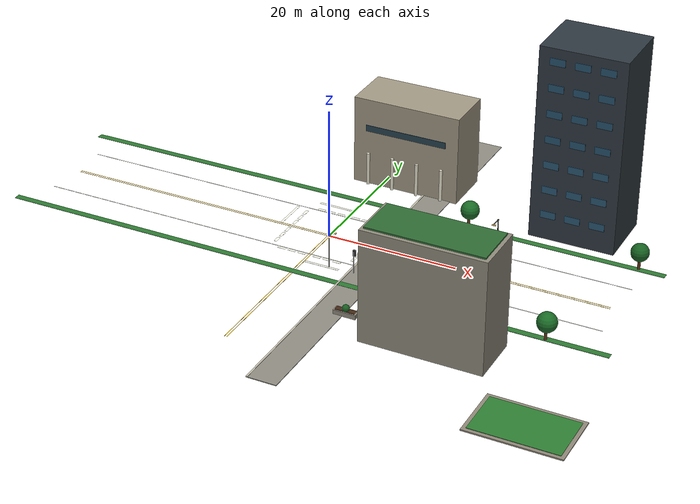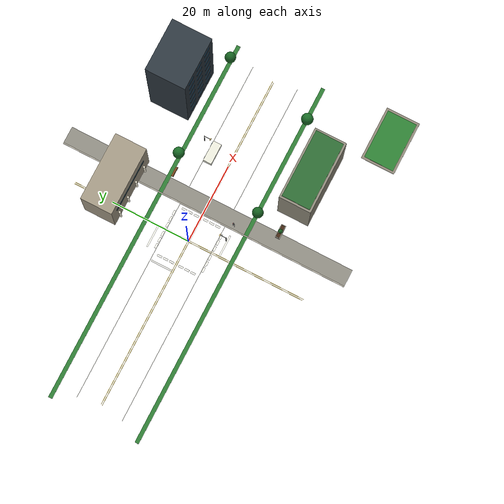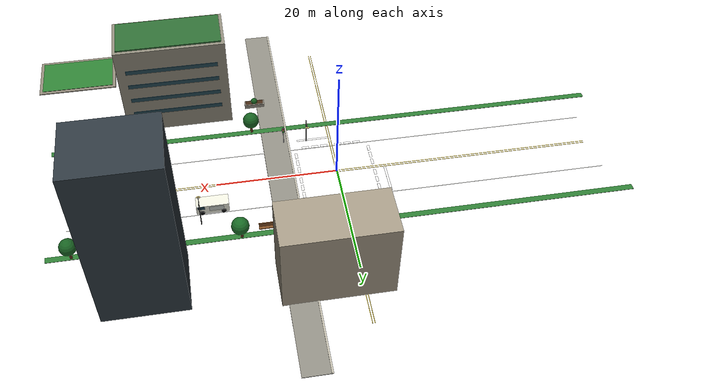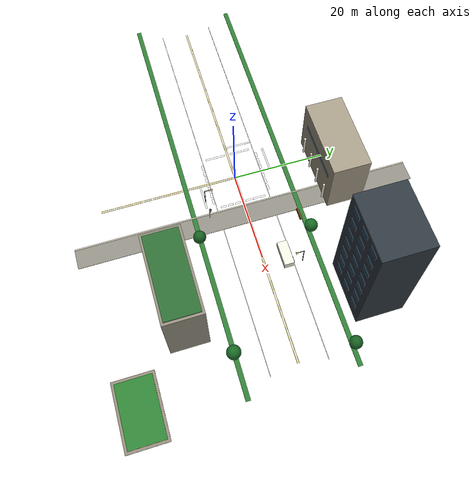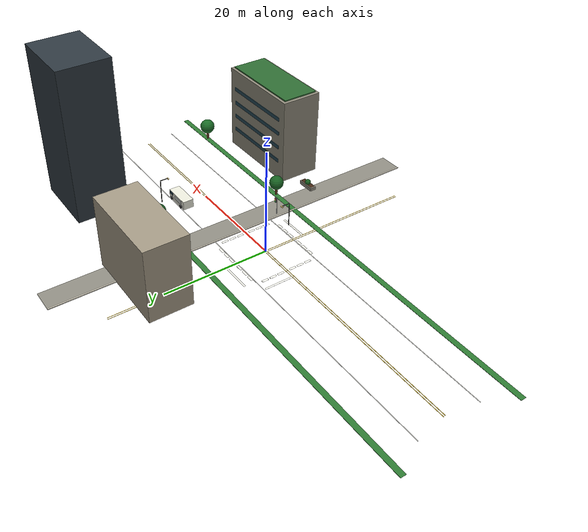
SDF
<sdf version="1.8">
 <world name="city_street">
  <model name="east_sidewalk">
   <static>true</static>
   <link name="link">
    <collision name="collision"><geometry><box><size>4.2 74 0.12</size></box></geometry></collision>
    <visual name="concrete">
     <geometry><box><size>4.2 74 0.12</size></box></geometry>
     <material>
      <ambient>0.45 0.44 0.41 1</ambient>
      <diffuse>0.56 0.55 0.51 1</diffuse>
      <specular>0.08 0.08 0.07 1</specular>
     </material>
    </visual>
   </link>
   <pose>9.4 0 0.06 0 0 0</pose>
  </model>
  <model name="east_curb">
   <static>true</static>
   <link name="link">
    <collision name="collision"><geometry><box><size>0.28 74 0.18</size></box></geometry></collision>
    <visual name="curb">
     <geometry><box><size>0.28 74 0.18</size></box></geometry>
     <material><ambient>0.64 0.62 0.57 1</ambient><diffuse>0.76 0.74 0.68 1</diffuse></material>
    </visual>
   </link>
   <pose>7.16 0 0.09 0 0 0</pose>
  </model>
  <model name="road_markings">
   <static>true</static>
   <link name="link">
    <visual name="double_yellow_left">
     <pose>0 0.18 0.032 0 0 0</pose>
     <geometry><box><size>86 0.08 0.012</size></box></geometry>
     <material><ambient>0.95 0.74 0.12 1</ambient><diffuse>1.00 0.82 0.16 1</diffuse></material>
    </visual>
    <visual name="double_yellow_right">
     <pose>0 -0.18 0.032 0 0 0</pose>
     <geometry><box><size>86 0.08 0.012</size></box></geometry>
     <material><ambient>0.95 0.74 0.12 1</ambient><diffuse>1.00 0.82 0.16 1</diffuse></material>
    </visual>
    <visual name="north_edge_line">
     <pose>0 5.9 0.032 0 0 0</pose>
     <geometry><box><size>88 0.10 0.012</size></box></geometry>
     <material><ambient>0.86 0.86 0.82 1</ambient><diffuse>0.96 0.96 0.92 1</diffuse></material>
    </visual>
    <visual name="south_edge_line">
     <pose>0 -5.9 0.032 0 0 0</pose>
     <geometry><box><size>88 0.10 0.012</size></box></geometry>
     <material><ambient>0.86 0.86 0.82 1</ambient><diffuse>0.96 0.96 0.92 1</diffuse></material>
    </visual>
    <visual name="cross_road_center_line_1">
     <pose>0.18 0 0.034 0 0 1.5708</pose>
     <geometry><box><size>60 0.08 0.012</size></box></geometry>
     <material><ambient>0.95 0.74 0.12 1</ambient><diffuse>1.00 0.82 0.16 1</diffuse></material>
    </visual>
    <visual name="cross_road_center_line_2">
     <pose>-0.18 0 0.034 0 0 1.5708</pose>
     <geometry><box><size>60 0.08 0.012</size></box></geometry>
     <material><ambient>0.95 0.74 0.12 1</ambient><diffuse>1.00 0.82 0.16 1</diffuse></material>
    </visual>
    <visual name="stop_line_west">
     <pose>-8.0 2.9 0.036 0 0 0</pose>
     <geometry><box><size>0.35 5.4 0.012</size></box></geometry>
     <material><ambient>0.92 0.92 0.88 1</ambient><diffuse>1.0 1.0 0.94 1</diffuse></material>
    </visual>
    <visual name="stop_line_east">
     <pose>8.0 -2.9 0.036 0 0 0</pose>
     <geometry><box><size>0.35 5.4 0.012</size></box></geometry>
     <material><ambient>0.92 0.92 0.88 1</ambient><diffuse>1.0 1.0 0.94 1</diffuse></material>
    </visual>
    <visual name="stop_line_north">
     <pose>-2.9 8.0 0.036 0 0 1.5708</pose>
     <geometry><box><size>0.35 5.4 0.012</size></box></geometry>
     <material><ambient>0.92 0.92 0.88 1</ambient><diffuse>1.0 1.0 0.94 1</diffuse></material>
    </visual>
    <visual name="stop_line_south">
     <pose>2.9 -8.0 0.036 0 0 1.5708</pose>
     <geometry><box><size>0.35 5.4 0.012</size></box></geometry>
     <material><ambient>0.92 0.92 0.88 1</ambient><diffuse>1.0 1.0 0.94 1</diffuse></material>
    </visual>
    <visual name="crosswalk_west_1">
     <pose>-6.2 -4.4 0.04 0 0 0</pose>
     <geometry><box><size>0.42 1.2 0.012</size></box></geometry>
     <material><ambient>0.90 0.90 0.86 1</ambient><diffuse>1.0 1.0 0.94 1</diffuse></material>
    </visual>
    <visual name="crosswalk_west_2">
     <pose>-6.2 -2.8 0.04 0 0 0</pose>
     <geometry><box><size>0.42 1.2 0.012</size></box></geometry>
     <material><ambient>0.90 0.90 0.86 1</ambient><diffuse>1.0 1.0 0.94 1</diffuse></material>
    </visual>
    <visual name="crosswalk_west_3">
     <pose>-6.2 -1.2 0.04 0 0 0</pose>
     <geometry><box><size>0.42 1.2 0.012</size></box></geometry>
     <material><ambient>0.90 0.90 0.86 1</ambient><diffuse>1.0 1.0 0.94 1</diffuse></material>
    </visual>
    <visual name="crosswalk_west_4">
     <pose>-6.2 1.2 0.04 0 0 0</pose>
     <geometry><box><size>0.42 1.2 0.012</size></box></geometry>
     <material><ambient>0.90 0.90 0.86 1</ambient><diffuse>1.0 1.0 0.94 1</diffuse></material>
    </visual>
    <visual name="crosswalk_west_5">
     <pose>-6.2 2.8 0.04 0 0 0</pose>
     <geometry><box><size>0.42 1.2 0.012</size></box></geometry>
     <material><ambient>0.90 0.90 0.86 1</ambient><diffuse>1.0 1.0 0.94 1</diffuse></material>
    </visual>
    <visual name="crosswalk_west_6">
     <pose>-6.2 4.4 0.04 0 0 0</pose>
     <geometry><box><size>0.42 1.2 0.012</size></box></geometry>
     <material><ambient>0.90 0.90 0.86 1</ambient><diffuse>1.0 1.0 0.94 1</diffuse></material>
    </visual>
    <visual name="crosswalk_east_1">
     <pose>6.2 -4.4 0.04 0 0 0</pose>
     <geometry><box><size>0.42 1.2 0.012</size></box></geometry>
     <material><ambient>0.90 0.90 0.86 1</ambient><diffuse>1.0 1.0 0.94 1</diffuse></material>
    </visual>
    <visual name="crosswalk_east_2">
     <pose>6.2 -2.8 0.04 0 0 0</pose>
     <geometry><box><size>0.42 1.2 0.012</size></box></geometry>
     <material><ambient>0.90 0.90 0.86 1</ambient><diffuse>1.0 1.0 0.94 1</diffuse></material>
    </visual>
    <visual name="crosswalk_east_3">
     <pose>6.2 -1.2 0.04 0 0 0</pose>
     <geometry><box><size>0.42 1.2 0.012</size></box></geometry>
     <material><ambient>0.90 0.90 0.86 1</ambient><diffuse>1.0 1.0 0.94 1</diffuse></material>
    </visual>
    <visual name="crosswalk_east_4">
     <pose>6.2 1.2 0.04 0 0 0</pose>
     <geometry><box><size>0.42 1.2 0.012</size></box></geometry>
     <material><ambient>0.90 0.90 0.86 1</ambient><diffuse>1.0 1.0 0.94 1</diffuse></material>
    </visual>
    <visual name="crosswalk_east_5">
     <pose>6.2 2.8 0.04 0 0 0</pose>
     <geometry><box><size>0.42 1.2 0.012</size></box></geometry>
     <material><ambient>0.90 0.90 0.86 1</ambient><diffuse>1.0 1.0 0.94 1</diffuse></material>
    </visual>
    <visual name="crosswalk_east_6">
     <pose>6.2 4.4 0.04 0 0 0</pose>
     <geometry><box><size>0.42 1.2 0.012</size></box></geometry>
     <material><ambient>0.90 0.90 0.86 1</ambient><diffuse>1.0 1.0 0.94 1</diffuse></material>
    </visual>
    <visual name="crosswalk_north_1">
     <pose>-4.4 6.2 0.04 0 0 1.5708</pose>
     <geometry><box><size>0.42 1.2 0.012</size></box></geometry>
     <material><ambient>0.90 0.90 0.86 1</ambient><diffuse>1.0 1.0 0.94 1</diffuse></material>
    </visual>
    <visual name="crosswalk_north_2">
     <pose>-2.8 6.2 0.04 0 0 1.5708</pose>
     <geometry><box><size>0.42 1.2 0.012</size></box></geometry>
     <material><ambient>0.90 0.90 0.86 1</ambient><diffuse>1.0 1.0 0.94 1</diffuse></material>
    </visual>
    <visual name="crosswalk_north_3">
     <pose>-1.2 6.2 0.04 0 0 1.5708</pose>
     <geometry><box><size>0.42 1.2 0.012</size></box></geometry>
     <material><ambient>0.90 0.90 0.86 1</ambient><diffuse>1.0 1.0 0.94 1</diffuse></material>
    </visual>
    <visual name="crosswalk_north_4">
     <pose>1.2 6.2 0.04 0 0 1.5708</pose>
     <geometry><box><size>0.42 1.2 0.012</size></box></geometry>
     <material><ambient>0.90 0.90 0.86 1</ambient><diffuse>1.0 1.0 0.94 1</diffuse></material>
    </visual>
    <visual name="crosswalk_north_5">
     <pose>2.8 6.2 0.04 0 0 1.5708</pose>
     <geometry><box><size>0.42 1.2 0.012</size></box></geometry>
     <material><ambient>0.90 0.90 0.86 1</ambient><diffuse>1.0 1.0 0.94 1</diffuse></material>
    </visual>
    <visual name="crosswalk_north_6">
     <pose>4.4 6.2 0.04 0 0 1.5708</pose>
     <geometry><box><size>0.42 1.2 0.012</size></box></geometry>
     <material><ambient>0.90 0.90 0.86 1</ambient><diffuse>1.0 1.0 0.94 1</diffuse></material>
    </visual>
    <visual name="crosswalk_south_1">
     <pose>-4.4 -6.2 0.04 0 0 1.5708</pose>
     <geometry><box><size>0.42 1.2 0.012</size></box></geometry>
     <material><ambient>0.90 0.90 0.86 1</ambient><diffuse>1.0 1.0 0.94 1</diffuse></material>
    </visual>
    <visual name="crosswalk_south_2">
     <pose>-2.8 -6.2 0.04 0 0 1.5708</pose>
     <geometry><box><size>0.42 1.2 0.012</size></box></geometry>
     <material><ambient>0.90 0.90 0.86 1</ambient><diffuse>1.0 1.0 0.94 1</diffuse></material>
    </visual>
    <visual name="crosswalk_south_3">
     <pose>-1.2 -6.2 0.04 0 0 1.5708</pose>
     <geometry><box><size>0.42 1.2 0.012</size></box></geometry>
     <material><ambient>0.90 0.90 0.86 1</ambient><diffuse>1.0 1.0 0.94 1</diffuse></material>
    </visual>
    <visual name="crosswalk_south_4">
     <pose>1.2 -6.2 0.04 0 0 1.5708</pose>
     <geometry><box><size>0.42 1.2 0.012</size></box></geometry>
     <material><ambient>0.90 0.90 0.86 1</ambient><diffuse>1.0 1.0 0.94 1</diffuse></material>
    </visual>
    <visual name="crosswalk_south_5">
     <pose>2.8 -6.2 0.04 0 0 1.5708</pose>
     <geometry><box><size>0.42 1.2 0.012</size></box></geometry>
     <material><ambient>0.90 0.90 0.86 1</ambient><diffuse>1.0 1.0 0.94 1</diffuse></material>
    </visual>
    <visual name="crosswalk_south_6">
     <pose>4.4 -6.2 0.04 0 0 1.5708</pose>
     <geometry><box><size>0.42 1.2 0.012</size></box></geometry>
     <material><ambient>0.90 0.90 0.86 1</ambient><diffuse>1.0 1.0 0.94 1</diffuse></material>
    </visual>
   </link>
  </model>
  <model name="north_east_glass_tower">
   <static>true</static>
   <pose>32 18.5 0 0 0 0</pose>
   <link name="link">
    <collision name="collision">
     <pose>0 0 15 0 0 0</pose>
     <geometry><box><size>13 10 30</size></box></geometry>
    </collision>
    <visual name="dark_core">
     <pose>0 0 15 0 0 0</pose>
     <geometry><box><size>13 10 30</size></box></geometry>
     <material>
      <ambient>0.13 0.16 0.18 1</ambient>
      <diffuse>0.18 0.22 0.25 1</diffuse>
      <specular>0.30 0.34 0.36 1</specular>
     </material>
    </visual>
    <visual name="front_glass_grid_1">
     <pose>-3.7 -5.06 4 0 0 0</pose>
     <geometry><box><size>2.3 0.08 1.1</size></box></geometry>
     <material>
      <ambient>0.09 0.20 0.27 1</ambient>
      <diffuse>0.16 0.34 0.45 1</diffuse>
      <specular>0.70 0.76 0.82 1</specular>
     </material>
    </visual>
    <visual name="front_glass_grid_2">
     <pose>0 -5.06 4 0 0 0</pose>
     <geometry><box><size>2.3 0.08 1.1</size></box></geometry>
     <material>
      <ambient>0.09 0.20 0.27 1</ambient>
      <diffuse>0.16 0.34 0.45 1</diffuse>
      <specular>0.70 0.76 0.82 1</specular>
     </material>
    </visual>
    <visual name="front_glass_grid_3">
     <pose>3.7 -5.06 4 0 0 0</pose>
     <geometry><box><size>2.3 0.08 1.1</size></box></geometry>
     <material>
      <ambient>0.09 0.20 0.27 1</ambient>
      <diffuse>0.16 0.34 0.45 1</diffuse>
      <specular>0.70 0.76 0.82 1</specular>
     </material>
    </visual>
    <visual name="front_glass_grid_4">
     <pose>-3.7 -5.06 8 0 0 0</pose>
     <geometry><box><size>2.3 0.08 1.1</size></box></geometry>
     <material>
      <ambient>0.09 0.20 0.27 1</ambient>
      <diffuse>0.16 0.34 0.45 1</diffuse>
      <specular>0.70 0.76 0.82 1</specular>
     </material>
    </visual>
    <visual name="front_glass_grid_5">
     <pose>0 -5.06 8 0 0 0</pose>
     <geometry><box><size>2.3 0.08 1.1</size></box></geometry>
     <material>
      <ambient>0.09 0.20 0.27 1</ambient>
      <diffuse>0.16 0.34 0.45 1</diffuse>
      <specular>0.70 0.76 0.82 1</specular>
     </material>
    </visual>
    <visual name="front_glass_grid_6">
     <pose>3.7 -5.06 8 0 0 0</pose>
     <geometry><box><size>2.3 0.08 1.1</size></box></geometry>
     <material>
      <ambient>0.09 0.20 0.27 1</ambient>
      <diffuse>0.16 0.34 0.45 1</diffuse>
      <specular>0.70 0.76 0.82 1</specular>
     </material>
    </visual>
    <visual name="front_glass_grid_7">
     <pose>-3.7 -5.06 12 0 0 0</pose>
     <geometry><box><size>2.3 0.08 1.1</size></box></geometry>
     <material>
      <ambient>0.09 0.20 0.27 1</ambient>
      <diffuse>0.16 0.34 0.45 1</diffuse>
      <specular>0.70 0.76 0.82 1</specular>
     </material>
    </visual>
    <visual name="front_glass_grid_8">
     <pose>0 -5.06 12 0 0 0</pose>
     <geometry><box><size>2.3 0.08 1.1</size></box></geometry>
     <material>
      <ambient>0.09 0.20 0.27 1</ambient>
      <diffuse>0.16 0.34 0.45 1</diffuse>
      <specular>0.70 0.76 0.82 1</specular>
     </material>
    </visual>
    <visual name="front_glass_grid_9">
     <pose>3.7 -5.06 12 0 0 0</pose>
     <geometry><box><size>2.3 0.08 1.1</size></box></geometry>
     <material>
      <ambient>0.09 0.20 0.27 1</ambient>
      <diffuse>0.16 0.34 0.45 1</diffuse>
      <specular>0.70 0.76 0.82 1</specular>
     </material>
    </visual>
    <visual name="front_glass_grid_10">
     <pose>-3.7 -5.06 16 0 0 0</pose>
     <geometry><box><size>2.3 0.08 1.1</size></box></geometry>
     <material>
      <ambient>0.08 0.19 0.26 1</ambient>
      <diffuse>0.15 0.32 0.43 1</diffuse>
      <specular>0.70 0.76 0.82 1</specular>
     </material>
    </visual>
    <visual name="front_glass_grid_11">
     <pose>0 -5.06 16 0 0 0</pose>
     <geometry><box><size>2.3 0.08 1.1</size></box></geometry>
     <material>
      <ambient>0.08 0.19 0.26 1</ambient>
      <diffuse>0.15 0.32 0.43 1</diffuse>
      <specular>0.70 0.76 0.82 1</specular>
     </material>
    </visual>
    <visual name="front_glass_grid_12">
     <pose>3.7 -5.06 16 0 0 0</pose>
     <geometry><box><size>2.3 0.08 1.1</size></box></geometry>
     <material>
      <ambient>0.08 0.19 0.26 1</ambient>
      <diffuse>0.15 0.32 0.43 1</diffuse>
      <specular>0.70 0.76 0.82 1</specular>
     </material>
    </visual>
    <visual name="front_glass_grid_13">
     <pose>-3.7 -5.06 20 0 0 0</pose>
     <geometry><box><size>2.3 0.08 1.1</size></box></geometry>
     <material>
      <ambient>0.08 0.19 0.26 1</ambient>
      <diffuse>0.15 0.32 0.43 1</diffuse>
      <specular>0.70 0.76 0.82 1</specular>
     </material>
    </visual>
    <visual name="front_glass_grid_14">
     <pose>0 -5.06 20 0 0 0</pose>
     <geometry><box><size>2.3 0.08 1.1</size></box></geometry>
     <material>
      <ambient>0.08 0.19 0.26 1</ambient>
      <diffuse>0.15 0.32 0.43 1</diffuse>
      <specular>0.70 0.76 0.82 1</specular>
     </material>
    </visual>
    <visual name="front_glass_grid_15">
     <pose>3.7 -5.06 20 0 0 0</pose>
     <geometry><box><size>2.3 0.08 1.1</size></box></geometry>
     <material>
      <ambient>0.08 0.19 0.26 1</ambient>
      <diffuse>0.15 0.32 0.43 1</diffuse>
      <specular>0.70 0.76 0.82 1</specular>
     </material>
    </visual>
    <visual name="front_glass_grid_16">
     <pose>-3.7 -5.06 24 0 0 0</pose>
     <geometry><box><size>2.3 0.08 1.1</size></box></geometry>
     <material>
      <ambient>0.08 0.19 0.26 1</ambient>
      <diffuse>0.15 0.32 0.43 1</diffuse>
      <specular>0.70 0.76 0.82 1</specular>
     </material>
    </visual>
    <visual name="front_glass_grid_17">
     <pose>0 -5.06 24 0 0 0</pose>
     <geometry><box><size>2.3 0.08 1.1</size></box></geometry>
     <material>
      <ambient>0.08 0.19 0.26 1</ambient>
      <diffuse>0.15 0.32 0.43 1</diffuse>
      <specular>0.70 0.76 0.82 1</specular>
     </material>
    </visual>
    <visual name="front_glass_grid_18">
     <pose>3.7 -5.06 24 0 0 0</pose>
     <geometry><box><size>2.3 0.08 1.1</size></box></geometry>
     <material>
      <ambient>0.08 0.19 0.26 1</ambient>
      <diffuse>0.15 0.32 0.43 1</diffuse>
      <specular>0.70 0.76 0.82 1</specular>
     </material>
    </visual>
    <visual name="front_glass_grid_19">
     <pose>-3.7 -5.06 28 0 0 0</pose>
     <geometry><box><size>2.3 0.08 1.1</size></box></geometry>
     <material>
      <ambient>0.08 0.19 0.26 1</ambient>
      <diffuse>0.15 0.32 0.43 1</diffuse>
      <specular>0.70 0.76 0.82 1</specular>
     </material>
    </visual>
    <visual name="front_glass_grid_20">
     <pose>0 -5.06 28 0 0 0</pose>
     <geometry><box><size>2.3 0.08 1.1</size></box></geometry>
     <material>
      <ambient>0.08 0.19 0.26 1</ambient>
      <diffuse>0.15 0.32 0.43 1</diffuse>
      <specular>0.70 0.76 0.82 1</specular>
     </material>
    </visual>
    <visual name="front_glass_grid_21">
     <pose>3.7 -5.06 28 0 0 0</pose>
     <geometry><box><size>2.3 0.08 1.1</size></box></geometry>
     <material>
      <ambient>0.08 0.19 0.26 1</ambient>
      <diffuse>0.15 0.32 0.43 1</diffuse>
      <specular>0.70 0.76 0.82 1</specular>
     </material>
    </visual>
   </link>
  </model>
  <model name="south_east_mixed_use_block">
   <static>true</static>
   <pose>25 -19 0 0 0 0</pose>
   <link name="link">
    <collision name="collision">
     <pose>0 0 8.5 0 0 0</pose>
     <geometry><box><size>18 8 17</size></box></geometry>
    </collision>
    <visual name="stone_mass">
     <pose>0 0 8.5 0 0 0</pose>
     <geometry><box><size>18 8 17</size></box></geometry>
     <material>
      <ambient>0.42 0.40 0.35 1</ambient>
      <diffuse>0.56 0.54 0.48 1</diffuse>
      <specular>0.08 0.08 0.07 1</specular>
     </material>
    </visual>
    <visual name="window_strip_01">
     <pose>0 4.06 4 0 0 0</pose>
     <geometry><box><size>15 0.08 0.75</size></box></geometry>
     <material>
      <ambient>0.09 0.17 0.21 1</ambient>
      <diffuse>0.14 0.28 0.33 1</diffuse>
      <specular>0.58 0.65 0.70 1</specular>
     </material>
    </visual>
    <visual name="window_strip_02">
     <pose>0 4.06 7 0 0 0</pose>
     <geometry><box><size>15 0.08 0.75</size></box></geometry>
     <material>
      <ambient>0.09 0.17 0.21 1</ambient>
      <diffuse>0.14 0.28 0.33 1</diffuse>
      <specular>0.58 0.65 0.70 1</specular>
     </material>
    </visual>
    <visual name="window_strip_03">
     <pose>0 4.06 10 0 0 0</pose>
     <geometry><box><size>15 0.08 0.75</size></box></geometry>
     <material>
      <ambient>0.09 0.17 0.21 1</ambient>
      <diffuse>0.14 0.28 0.33 1</diffuse>
      <specular>0.58 0.65 0.70 1</specular>
     </material>
    </visual>
    <visual name="window_strip_04">
     <pose>0 4.06 13 0 0 0</pose>
     <geometry><box><size>15 0.08 0.75</size></box></geometry>
     <material>
      <ambient>0.09 0.17 0.21 1</ambient>
      <diffuse>0.14 0.28 0.33 1</diffuse>
      <specular>0.58 0.65 0.70 1</specular>
     </material>
    </visual>
    <visual name="green_roof">
     <pose>0 0 17.18 0 0 0</pose>
     <geometry><box><size>17 7 0.25</size></box></geometry>
     <material><ambient>0.12 0.28 0.13 1</ambient><diffuse>0.18 0.42 0.20 1</diffuse></material>
    </visual>
   </link>
  </model>
  <model name="north_center_civic_building">
   <static>true</static>
   <pose>4 21 0 0 0 0</pose>
   <link name="link">
    <collision name="collision">
     <pose>0 0 7 0 0 0</pose>
     <geometry><box><size>17 8 14</size></box></geometry>
    </collision>
    <visual name="facade">
     <pose>0 0 7 0 0 0</pose>
     <geometry><box><size>17 8 14</size></box></geometry>
     <material>
      <ambient>0.50 0.47 0.40 1</ambient>
      <diffuse>0.64 0.60 0.52 1</diffuse>
      <specular>0.08 0.08 0.07 1</specular>
     </material>
    </visual>
    <visual name="column_01">
     <pose>-6 -4.25 2.6 0 0 0</pose>
     <geometry><cylinder><radius>0.24</radius><length>5.2</length></cylinder></geometry>
     <material><ambient>0.80 0.78 0.70 1</ambient><diffuse>0.90 0.88 0.80 1</diffuse></material>
    </visual>
    <visual name="column_02">
     <pose>-2 -4.25 2.6 0 0 0</pose>
     <geometry><cylinder><radius>0.24</radius><length>5.2</length></cylinder></geometry>
     <material><ambient>0.80 0.78 0.70 1</ambient><diffuse>0.90 0.88 0.80 1</diffuse></material>
    </visual>
    <visual name="column_03">
     <pose>2 -4.25 2.6 0 0 0</pose>
     <geometry><cylinder><radius>0.24</radius><length>5.2</length></cylinder></geometry>
     <material><ambient>0.80 0.78 0.70 1</ambient><diffuse>0.90 0.88 0.80 1</diffuse></material>
    </visual>
    <visual name="column_04">
     <pose>6 -4.25 2.6 0 0 0</pose>
     <geometry><cylinder><radius>0.24</radius><length>5.2</length></cylinder></geometry>
     <material><ambient>0.80 0.78 0.70 1</ambient><diffuse>0.90 0.88 0.80 1</diffuse></material>
    </visual>
    <visual name="upper_window_band">
     <pose>0 -4.06 9.3 0 0 0</pose>
     <geometry><box><size>13 0.08 1.0</size></box></geometry>
     <material>
      <ambient>0.10 0.17 0.20 1</ambient>
      <diffuse>0.15 0.26 0.31 1</diffuse>
      <specular>0.55 0.60 0.65 1</specular>
     </material>
    </visual>
   </link>
  </model>
  <model name="north_green_strip">
   <static>true</static>
   <link name="link">
    <visual name="grass">
     <geometry><box><size>94 1.0 0.06</size></box></geometry>
     <material><ambient>0.12 0.32 0.14 1</ambient><diffuse>0.18 0.48 0.20 1</diffuse></material>
    </visual>
   </link>
   <pose>0 11.25 0.12 0 0 0</pose>
  </model>
  <model name="south_green_strip">
   <static>true</static>
   <link name="link">
    <visual name="grass">
     <geometry><box><size>94 1.0 0.06</size></box></geometry>
     <material><ambient>0.12 0.32 0.14 1</ambient><diffuse>0.18 0.48 0.20 1</diffuse></material>
    </visual>
   </link>
   <pose>0 -11.25 0.12 0 0 0</pose>
  </model>
  <model name="pocket_park">
   <static>true</static>
   <pose>43 -31 0 0 0 0</pose>
   <link name="link">
    <collision name="low_wall_collision">
     <pose>0 0 0.25 0 0 0</pose>
     <geometry><box><size>13 8 0.5</size></box></geometry>
    </collision>
    <visual name="grass_square">
     <pose>0 0 0.08 0 0 0</pose>
     <geometry><box><size>13 8 0.12</size></box></geometry>
     <material><ambient>0.10 0.28 0.13 1</ambient><diffuse>0.17 0.42 0.19 1</diffuse></material>
    </visual>
    <visual name="edge_wall">
     <pose>0 0 0.32 0 0 0</pose>
     <geometry><box><size>13.6 8.6 0.2</size></box></geometry>
     <material><ambient>0.44 0.41 0.36 1</ambient><diffuse>0.56 0.53 0.47 1</diffuse></material>
    </visual>
    <visual name="inner_grass">
     <pose>0 0 0.45 0 0 0</pose>
     <geometry><box><size>12.5 7.5 0.08</size></box></geometry>
     <material><ambient>0.10 0.32 0.12 1</ambient><diffuse>0.18 0.50 0.20 1</diffuse></material>
    </visual>
   </link>
  </model>
  <model name="tree_north_04">
   <static>true</static>
   <pose>17 11.4 0 0 0 0</pose>
   <link name="link">
    <collision name="trunk_collision">
     <pose>0 0 1.05 0 0 0</pose>
     <geometry><cylinder><radius>0.22</radius><length>2.1</length></cylinder></geometry>
    </collision>
    <visual name="trunk">
     <pose>0 0 1.05 0 0 0</pose>
     <geometry><cylinder><radius>0.22</radius><length>2.1</length></cylinder></geometry>
     <material><ambient>0.24 0.13 0.07 1</ambient><diffuse>0.36 0.20 0.10 1</diffuse></material>
    </visual>
    <visual name="canopy">
     <pose>0.1 0.1 2.9 0 0 0</pose>
     <geometry><sphere><radius>1.4</radius></sphere></geometry>
     <material><ambient>0.06 0.26 0.09 1</ambient><diffuse>0.10 0.42 0.15 1</diffuse></material>
    </visual>
   </link>
  </model>
  <model name="tree_north_05">
   <static>true</static>
   <pose>43 11.4 0 0 0 0</pose>
   <link name="link">
    <collision name="trunk_collision">
     <pose>0 0 1.05 0 0 0</pose>
     <geometry><cylinder><radius>0.22</radius><length>2.1</length></cylinder></geometry>
    </collision>
    <visual name="trunk">
     <pose>0 0 1.05 0 0 0</pose>
     <geometry><cylinder><radius>0.22</radius><length>2.1</length></cylinder></geometry>
     <material><ambient>0.24 0.13 0.07 1</ambient><diffuse>0.36 0.20 0.10 1</diffuse></material>
    </visual>
    <visual name="canopy">
     <pose>0 0 2.85 0 0 0</pose>
     <geometry><sphere><radius>1.35</radius></sphere></geometry>
     <material><ambient>0.05 0.24 0.08 1</ambient><diffuse>0.09 0.38 0.13 1</diffuse></material>
    </visual>
   </link>
  </model>
  <model name="tree_south_03">
   <static>true</static>
   <pose>13 -11.4 0 0 0 0</pose>
   <link name="link">
    <collision name="trunk_collision">
     <pose>0 0 1.05 0 0 0</pose>
     <geometry><cylinder><radius>0.22</radius><length>2.1</length></cylinder></geometry>
    </collision>
    <visual name="trunk">
     <pose>0 0 1.05 0 0 0</pose>
     <geometry><cylinder><radius>0.22</radius><length>2.1</length></cylinder></geometry>
     <material><ambient>0.24 0.13 0.07 1</ambient><diffuse>0.36 0.20 0.10 1</diffuse></material>
    </visual>
    <visual name="canopy">
     <pose>0 0 2.8 0 0 0</pose>
     <geometry><sphere><radius>1.35</radius></sphere></geometry>
     <material><ambient>0.05 0.24 0.08 1</ambient><diffuse>0.09 0.38 0.13 1</diffuse></material>
    </visual>
   </link>
  </model>
  <model name="tree_south_04">
   <static>true</static>
   <pose>38 -11.4 0 0 0 0</pose>
   <link name="link">
    <collision name="trunk_collision">
     <pose>0 0 1.05 0 0 0</pose>
     <geometry><cylinder><radius>0.22</radius><length>2.1</length></cylinder></geometry>
    </collision>
    <visual name="trunk">
     <pose>0 0 1.05 0 0 0</pose>
     <geometry><cylinder><radius>0.22</radius><length>2.1</length></cylinder></geometry>
     <material><ambient>0.24 0.13 0.07 1</ambient><diffuse>0.36 0.20 0.10 1</diffuse></material>
    </visual>
    <visual name="canopy">
     <pose>0.1 -0.05 2.9 0 0 0</pose>
     <geometry><sphere><radius>1.45</radius></sphere></geometry>
     <material><ambient>0.06 0.26 0.09 1</ambient><diffuse>0.10 0.42 0.15 1</diffuse></material>
    </visual>
   </link>
  </model>
  <model name="parked_white_delivery_van">
   <static>true</static>
   <pose>21 4.7 0.04 0 0 3.1416</pose>
   <link name="link">
    <collision name="body_collision">
     <pose>0 0 0.85 0 0 0</pose>
     <geometry><box><size>5.2 2.1 1.7</size></box></geometry>
    </collision>
    <visual name="body">
     <pose>0 0 0.85 0 0 0</pose>
     <geometry><box><size>5.2 2.1 1.7</size></box></geometry>
     <material>
      <ambient>0.78 0.78 0.73 1</ambient>
      <diffuse>0.92 0.92 0.86 1</diffuse>
      <specular>0.28 0.28 0.26 1</specular>
     </material>
    </visual>
    <visual name="windshield">
     <pose>-1.8 -1.08 1.35 0 0 0</pose>
     <geometry><box><size>1.1 0.08 0.55</size></box></geometry>
     <material>
      <ambient>0.08 0.14 0.18 1</ambient>
      <diffuse>0.12 0.24 0.30 1</diffuse>
      <specular>0.70 0.76 0.80 1</specular>
     </material>
    </visual>
    <visual name="side_panel">
     <pose>0.6 -1.08 1.1 0 0 0</pose>
     <geometry><box><size>2.3 0.08 0.9</size></box></geometry>
     <material><ambient>0.68 0.70 0.68 1</ambient><diffuse>0.78 0.80 0.78 1</diffuse></material>
    </visual>
    <visual name="wheel_fl">
     <pose>-1.7 -1.12 0.33 1.5708 0 0</pose>
     <geometry><cylinder><radius>0.38</radius><length>0.28</length></cylinder></geometry>
     <material><ambient>0.02 0.02 0.02 1</ambient><diffuse>0.03 0.03 0.03 1</diffuse></material>
    </visual>
    <visual name="wheel_fr">
     <pose>1.7 -1.12 0.33 1.5708 0 0</pose>
     <geometry><cylinder><radius>0.38</radius><length>0.28</length></cylinder></geometry>
     <material><ambient>0.02 0.02 0.02 1</ambient><diffuse>0.03 0.03 0.03 1</diffuse></material>
    </visual>
   </link>
  </model>
  <model name="streetlight_north_east">
   <static>true</static>
   <pose>23 7.8 0 0 0 0</pose>
   <link name="link">
    <collision name="pole_collision">
     <pose>0 0 2.4 0 0 0</pose>
     <geometry><cylinder><radius>0.08</radius><length>4.8</length></cylinder></geometry>
    </collision>
    <visual name="pole">
     <pose>0 0 2.4 0 0 0</pose>
     <geometry><cylinder><radius>0.08</radius><length>4.8</length></cylinder></geometry>
     <material>
      <ambient>0.23 0.23 0.22 1</ambient>
      <diffuse>0.36 0.36 0.34 1</diffuse>
      <specular>0.30 0.30 0.28 1</specular>
     </material>
    </visual>
    <visual name="arm">
     <pose>0 -0.8 4.75 0 0 0</pose>
     <geometry><box><size>0.12 1.6 0.10</size></box></geometry>
     <material><ambient>0.23 0.23 0.22 1</ambient><diffuse>0.36 0.36 0.34 1</diffuse></material>
    </visual>
    <visual name="lamp_head">
     <pose>0 -1.6 4.65 0 0 0</pose>
     <geometry><box><size>0.55 0.25 0.15</size></box></geometry>
     <material>
      <ambient>0.95 0.76 0.42 1</ambient>
      <diffuse>1.0 0.86 0.52 1</diffuse>
      <emissive>0.9 0.65 0.32 1</emissive>
     </material>
    </visual>
    <light name="warm_pool" type="point">
     <pose>0 -1.6 4.6 0 0 0</pose>
     <diffuse>1.0 0.78 0.45 1</diffuse>
     <specular>0.3 0.22 0.12 1</specular>
     <attenuation>
      <range>18</range>
      <constant>0.7</constant>
      <linear>0.08</linear>
      <quadratic>0.01</quadratic>
     </attenuation>
     <cast_shadows>false</cast_shadows>
    </light>
   </link>
  </model>
  <model name="streetlight_south_center">
   <static>true</static>
   <pose>4 -7.8 0 0 0 3.1416</pose>
   <link name="link">
    <collision name="pole_collision">
     <pose>0 0 2.4 0 0 0</pose>
     <geometry><cylinder><radius>0.08</radius><length>4.8</length></cylinder></geometry>
    </collision>
    <visual name="pole">
     <pose>0 0 2.4 0 0 0</pose>
     <geometry><cylinder><radius>0.08</radius><length>4.8</length></cylinder></geometry>
     <material>
      <ambient>0.23 0.23 0.22 1</ambient>
      <diffuse>0.36 0.36 0.34 1</diffuse>
      <specular>0.30 0.30 0.28 1</specular>
     </material>
    </visual>
    <visual name="arm">
     <pose>0 -0.8 4.75 0 0 0</pose>
     <geometry><box><size>0.12 1.6 0.10</size></box></geometry>
     <material><ambient>0.23 0.23 0.22 1</ambient><diffuse>0.36 0.36 0.34 1</diffuse></material>
    </visual>
    <visual name="lamp_head">
     <pose>0 -1.6 4.65 0 0 0</pose>
     <geometry><box><size>0.55 0.25 0.15</size></box></geometry>
     <material>
      <ambient>0.95 0.76 0.42 1</ambient>
      <diffuse>1.0 0.86 0.52 1</diffuse>
      <emissive>0.9 0.65 0.32 1</emissive>
     </material>
    </visual>
    <light name="warm_pool" type="point">
     <pose>0 -1.6 4.6 0 0 0</pose>
     <diffuse>1.0 0.78 0.45 1</diffuse>
     <specular>0.3 0.22 0.12 1</specular>
     <attenuation>
      <range>18</range>
      <constant>0.7</constant>
      <linear>0.08</linear>
      <quadratic>0.01</quadratic>
     </attenuation>
     <cast_shadows>false</cast_shadows>
    </light>
   </link>
  </model>
  <model name="traffic_light_south_east_corner">
   <static>true</static>
   <pose>7.9 -7.9 0 0 0 3.1416</pose>
   <link name="link">
    <collision name="pole_collision">
     <pose>0 0 1.8 0 0 0</pose>
     <geometry><cylinder><radius>0.07</radius><length>3.6</length></cylinder></geometry>
    </collision>
    <visual name="pole">
     <pose>0 0 1.8 0 0 0</pose>
     <geometry><cylinder><radius>0.07</radius><length>3.6</length></cylinder></geometry>
     <material><ambient>0.08 0.08 0.08 1</ambient><diffuse>0.12 0.12 0.12 1</diffuse></material>
    </visual>
    <visual name="signal_box">
     <pose>0 -0.25 3.25 0 0 0</pose>
     <geometry><box><size>0.45 0.22 0.95</size></box></geometry>
     <material><ambient>0.03 0.03 0.03 1</ambient><diffuse>0.05 0.05 0.05 1</diffuse></material>
    </visual>
    <visual name="red_lens">
     <pose>0 -0.38 3.55 0 0 0</pose>
     <geometry><sphere><radius>0.10</radius></sphere></geometry>
     <material>
      <ambient>0.55 0.02 0.01 1</ambient>
      <diffuse>0.95 0.04 0.02 1</diffuse>
      <emissive>0.65 0.02 0.01 1</emissive>
     </material>
    </visual>
    <visual name="yellow_lens">
     <pose>0 -0.38 3.25 0 0 0</pose>
     <geometry><sphere><radius>0.10</radius></sphere></geometry>
     <material><ambient>0.62 0.45 0.02 1</ambient><diffuse>0.95 0.72 0.04 1</diffuse></material>
    </visual>
    <visual name="green_lens">
     <pose>0 -0.38 2.95 0 0 0</pose>
     <geometry><sphere><radius>0.10</radius></sphere></geometry>
     <material><ambient>0.02 0.35 0.05 1</ambient><diffuse>0.04 0.75 0.10 1</diffuse></material>
    </visual>
   </link>
  </model>
  <model name="bench_north">
   <static>true</static>
   <pose>13 10.55 0.16 0 0 3.1416</pose>
   <link name="link">
    <collision name="collision">
     <pose>0 0 0.38 0 0 0</pose>
     <geometry><box><size>2.4 0.55 0.75</size></box></geometry>
    </collision>
    <visual name="seat">
     <pose>0 0 0.45 0 0 0</pose>
     <geometry><box><size>2.4 0.48 0.16</size></box></geometry>
     <material><ambient>0.32 0.19 0.08 1</ambient><diffuse>0.50 0.30 0.13 1</diffuse></material>
    </visual>
    <visual name="back">
     <pose>0 0.28 0.85 0 0 0</pose>
     <geometry><box><size>2.4 0.12 0.8</size></box></geometry>
     <material><ambient>0.32 0.19 0.08 1</ambient><diffuse>0.50 0.30 0.13 1</diffuse></material>
    </visual>
   </link>
  </model>
  <model name="planter_east">
   <static>true</static>
   <pose>11.8 -18 0.05 0 0 0</pose>
   <link name="link">
    <collision name="collision">
     <pose>0 0 0.35 0 0 0</pose>
     <geometry><box><size>3.4 1.2 0.7</size></box></geometry>
    </collision>
    <visual name="concrete_box">
     <pose>0 0 0.35 0 0 0</pose>
     <geometry><box><size>3.4 1.2 0.7</size></box></geometry>
     <material><ambient>0.44 0.42 0.38 1</ambient><diffuse>0.56 0.54 0.49 1</diffuse></material>
    </visual>
    <visual name="soil">
     <pose>0 0 0.75 0 0 0</pose>
     <geometry><box><size>3.0 0.85 0.08</size></box></geometry>
     <material><ambient>0.18 0.10 0.05 1</ambient><diffuse>0.27 0.16 0.08 1</diffuse></material>
    </visual>
    <visual name="shrub">
     <pose>0 0 1.05 0 0 0</pose>
     <geometry><sphere><radius>0.55</radius></sphere></geometry>
     <material><ambient>0.05 0.22 0.07 1</ambient><diffuse>0.09 0.36 0.12 1</diffuse></material>
    </visual>
   </link>
  </model>
 </world>
</sdf>
